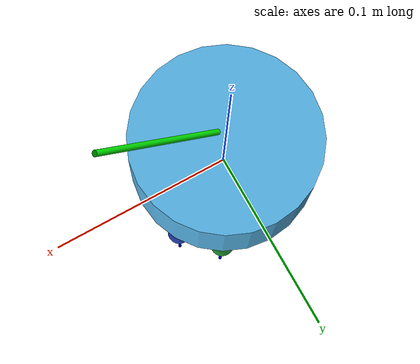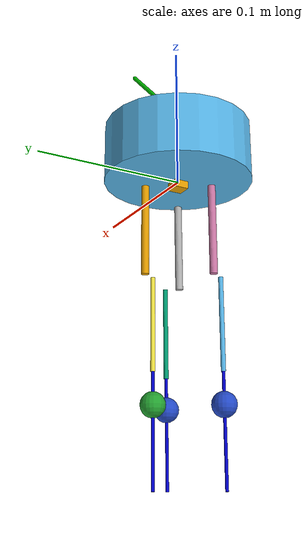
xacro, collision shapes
<?xml version="1.0"?>
<robot xmlns:xacro="http://www.ros.org/wiki/xacro" name="new_gurdy_drive">

    <gazebo>
        <plugin name="gazebo_ros_control" filename="libgazebo_ros_control.so">
            <robotNamespace>/new_gurdy</robotNamespace>
        </plugin>
    </gazebo>

    <!--MACROS-->

    <xacro:macro name="aux_link" params="number x y z r p yaw">
        <link name="aux_${number}_link">
            <inertial>
                <origin xyz="0 0 0.0285" rpy="0 0 0"/>
                <mass value="0.01" />
                <inertia ixx="2.64583333333e-08" ixy="0.0" ixz="0.0" iyy="2.64583333333e-08" iyz="0.0" izz="1.125e-08"/>
            </inertial>
            <collision>
                <origin xyz="0 0 0.00285" rpy="0 0 0"/>
                <geometry>
                    <cylinder length="0.005" radius="0.0015"/>
                </geometry>
            </collision>
            <visual>
                <origin rpy="0.0 0 0" xyz="0 0 0"/>
                <geometry>
                    <cylinder length="0.005" radius="0.0015"/>
                </geometry>
                <material name="blue"/>
            </visual>
	    </link>
        <joint name="head_aux_${number}_joint" type="revolute">
            <parent link="head_link"/>
            <child link="aux_${number}_link"/>
            <origin xyz="${x} ${y} ${z}" rpy="${r} ${p} ${yaw}"/>
            <limit lower="-1.55" upper="1.55" effort="1.0" velocity="0.005"/>
            <axis xyz="0 0 1"/>
        </joint>
    </xacro:macro>

    <xacro:macro name="upperleg_link" params="number">
        <link name="upperleg_M${number}_link">
            <inertial>
                <origin xyz="0 0 0.03" rpy="0 0 0"/>
                <mass value="0.01" />
                <inertia ixx="3.015625e-05" ixy="0.0" ixz="0.0" iyy="3.015625e-05" iyz="0.0" izz="3.125e-07"/>
            </inertial>
            <collision>
                <origin xyz="0 0 0.03" rpy="0 0 0"/>
                <geometry>
                    <cylinder length="0.06" radius="0.0025"/>
                </geometry>
            </collision>
            <visual>
                <origin rpy="0.0 0 0" xyz="0 0 0"/>
                <geometry>
                    <mesh filename="package://gurdy_description/models/gurdy/meshes/gurdy_higherleg_v2.dae"/>
                </geometry>
            </visual>
        </link>
        <joint name="auxs_upperlegM${number}_joint" type="revolute">
            <parent link="aux_${number}_link"/>
            <child link="upperleg_M${number}_link"/>
            <origin xyz="0 0 0" rpy="0 0 0"/>
            <limit lower="-1.55" upper="0.0" effort="1.0" velocity="0.005"/>
            <axis xyz="0 1 0"/>
	    </joint>
    </xacro:macro>

    <xacro:macro name="lowerleg_link"  params="number">
        <link name="lowerleg_M${number}_link">
            <inertial>
                <origin xyz="0 0 0.03" rpy="0 0 0"/>
                <mass value="0.01" />
                <inertia ixx="3.005625e-05" ixy="0.0" ixz="0.0" iyy="3.005625e-05" iyz="0.0" izz="1.125e-07"/>
            </inertial>
            <collision>
                <origin xyz="0 0 0.03" rpy="0 0 0"/>
                <geometry>
                    <cylinder length="0.06" radius="0.0015"/>
                </geometry>
            </collision>
            <visual>
                <origin rpy="0.0 0 0" xyz="0 0 0"/>
                <geometry>
                    <mesh filename="package://gurdy_description/models/gurdy/meshes/gurdy_lowerleg_v2.dae"/>
                </geometry>
            </visual>
        </link>
        <joint name="upperlegM${number}_lowerlegM${number}_joint" type="continuous">
            <parent link="upperleg_M${number}_link"/>
            <child link="lowerleg_M${number}_link"/>
             <origin xyz="0 0.0095 0.06" rpy="0 0 3.14159"/>
            <limit lower="-2.9" upper="1.5708" effort="1.0" velocity="0.005"/>
            <axis xyz="0 1 0"/>
        </joint>
    </xacro:macro>

    <xacro:macro name="internallowerleg_link" params="number">
        <link name="internallowerleg_M${number}_link">
            <inertial>
                <origin xyz="0 0 0.03" rpy="0 0 0"/>
                <mass value="0.01" />
                <inertia ixx="5.58333333333e-06" ixy="0.0" ixz="0.0" iyy="5.58333333333e-06" iyz="0.0" izz="5e-07"/>
            </inertial>
            <collision>
                <origin xyz="0 0 0.03" rpy="0 0 0"/>
                <geometry>
                    <cylinder length="0.08" radius="0.001"/>
                </geometry>
            </collision>
            <visual>
                <origin rpy="0.0 0 0" xyz="0 0 0"/>
                <geometry>
                    <cylinder length="0.03" radius="0.001"/>
                </geometry>
                <material name="blue"/>
            </visual>
        </link>
        <joint name="internal_lowerleg${number}_joint" type="prismatic">
            <parent link="lowerleg_M${number}_link"/>
            <child link="internallowerleg_M${number}_link"/>
            <origin xyz="0 0.0 0.06" rpy="0 0 0"/>
            <limit lower="0" upper="0.02" effort="1.0" velocity="0.005"/>
            <axis xyz="0 0 1"/>
	    </joint>
    </xacro:macro>

    <xacro:macro name="foot_link" params="number colour">
        <link name="footM${number}_link">
            <inertial>
                <origin xyz="0 0 0" rpy="0 0 0"/>
                <mass value="0.01" />
                <inertia ixx="1.28e-06" ixy="0.0" ixz="0.0" iyy="1.28e-06" iyz="0.0" izz="1.28e-06"/>
            </inertial>
            <collision>
                <origin xyz="0 0 0" rpy="0 0 0"/>
                <geometry>
                    <sphere radius="0.008"/>
                </geometry>
            </collision>
            <visual>
                <origin rpy="0.0 0 0" xyz="0 0 0"/>
                <geometry>
                    <sphere radius="0.008"/>
                </geometry>
            </visual>
        </link>
        <gazebo reference="footM${number}_link">
            <kp>1000.0</kp>
            <kd>1000.0</kd>
            <mu1>10.0</mu1>
            <mu2>10.0</mu2>
            <material>Gazebo/${colour}</material>
        </gazebo>
        <joint name="basefoot_peg_M${number}_joint" type="continuous">
            <parent link="internallowerleg_M${number}_link"/>
            <child link="footM${number}_link"/>
            <origin xyz="0 0 0.02" rpy="0 0 0"/>
        </joint>
    </xacro:macro>

 <!-- Writing the xacro of transmissions -->

    <xacro:macro name="head_transmission" params="number number_transm">

        <transmission name="tran${number_transm}">
            <type>transmission_interface/SimpleTransmission</type>
            <joint name="head_aux_${number}_joint">
                <hardwareInterface>EffortJointInterface</hardwareInterface>
            </joint>
            <actuator name="motor${number_transm}">
                <hardwareInterface>EffortJointInterface</hardwareInterface>
                <mechanicalReduction>1</mechanicalReduction>
            </actuator>
        </transmission>
    </xacro:macro>

    <xacro:macro name="aux_transmission" params="number number_transm">

        <transmission name="tran${number_transm}">
            <type>transmission_interface/SimpleTransmission</type>
            <joint name="auxs_upperlegM${number}_joint">
                <hardwareInterface>EffortJointInterface</hardwareInterface>
            </joint>
            <actuator name="motor${number_transm}">
                <hardwareInterface>EffortJointInterface</hardwareInterface>
                <mechanicalReduction>1</mechanicalReduction>
            </actuator>
        </transmission>
    </xacro:macro>

    <xacro:macro name="intermediate_transmission" params="number number_transm">

        <transmission name="tran${number_transm}">
            <type>transmission_interface/SimpleTransmission</type>
            <joint name="upperlegM${number}_lowerlegM${number}_joint">
                <hardwareInterface>EffortJointInterface</hardwareInterface>
            </joint>
            <actuator name="motor${number_transm}">
                <hardwareInterface>EffortJointInterface</hardwareInterface>
                <mechanicalReduction>1</mechanicalReduction>
            </actuator>
        </transmission>
    </xacro:macro>

    <xacro:macro name="prismatic_transmission" params="number number_transm">

        <transmission name="tran${number_transm}">
            <type>transmission_interface/SimpleTransmission</type>
            <joint name="internal_lowerleg${number}_joint">
                <hardwareInterface>EffortJointInterface</hardwareInterface>
            </joint>
            <actuator name="motor${number_transm}">
                <hardwareInterface>EffortJointInterface</hardwareInterface>
                <mechanicalReduction>1</mechanicalReduction>
            </actuator>
        </transmission>
    </xacro:macro>

     <xacro:macro name="base_transmission" params="number number_transm">

        <transmission name="tran${number_transm}">
            <type>transmission_interface/SimpleTransmission</type>
            <joint name="basefoot_peg_M${number}_joint">
                <hardwareInterface>EffortJointInterface</hardwareInterface>
            </joint>
            <actuator name="motor${number_transm}">
                <hardwareInterface>EffortJointInterface</hardwareInterface>
                <mechanicalReduction>1</mechanicalReduction>
            </actuator>
        </transmission>
    </xacro:macro>

    <material name="blue">
        <color rgba="0 0 0.8 1"/>
    </material>
    <material name="red">
        <color rgba="0.8 0 0 1"/>
    </material>
    <material name="green">
        <color rgba="0 0.8 0 1"/>
    </material>

    <!-- *** Link Definitions *** -->

    <link name="base_link">
        <collision>
            <origin xyz="0 0 0" rpy="0 0 0"/>
            <geometry>
                <box size="0.01 0.01 0.01"/>
            </geometry>
        </collision>
		<visual>
		    <origin xyz="0 0 0.01" rpy="0 0 0"/>
			<geometry>
				<box size="0.01 0.01 0.01"/>
			</geometry>
		</visual>
	</link>

    <link name="head_link">
 	    <inertial>
            <origin xyz="0 0 0.02" rpy="0 0 0"/>
            <mass value="0.01" />
            <inertia ixx="7.58333333333e-07" ixy="0.0" ixz="0.0" iyy="7.58333333333e-07" iyz="0.0" izz="1.25e-06"/>
        </inertial>
        <collision>
            <origin xyz="0 0 0.02" rpy="0 0 0"/>
            <geometry>
                <cylinder radius="0.05" length="0.04"/>
            </geometry>
        </collision>
        <visual>
            <origin rpy="0.0 0 0" xyz="0 0 0"/>
            <geometry>
                <mesh filename="package://gurdy_description/models/gurdy/meshes/gurdy_head_v2.dae"/>
            </geometry>
        </visual>
	</link>

    <gazebo reference="head_link">
        <mu1>10.0</mu1>
        <mu2>10.0</mu2>
    </gazebo>

    <joint name="fixed" type="fixed">
        <parent link="base_link"/>
        <child link="head_link"/>
    </joint>

    <link name="antenna_link">
 	    <inertial>
            <origin xyz="0 0 0.05" rpy="0 0 0"/>
            <mass value="0.005" />
            <inertia ixx="3.01322916667e-06" ixy="0.0" ixz="0.0" iyy="3.01322916667e-06" iyz="0.0" izz="5.625e-09"/>
        </inertial>
        <collision>
            <origin xyz="0 0 0.05" rpy="0 0 0"/>
            <geometry>
                <cylinder length="0.085" radius="0.0015"/>
            </geometry>
        </collision>
        <visual>
            <origin rpy="0.0 0 0" xyz="0 0 0"/>
            <geometry>
                <cylinder length="0.085" radius="0.0015"/>
            </geometry>
            <material name="green"/>
        </visual>
	</link>

    <joint name="antenna_joint" type="fixed">
    	<parent link="head_link"/>
    	<child link="antenna_link"/>
        <origin xyz="0.0 0.0 0.051" rpy="0.0 0.785 0.0"/>
	</joint>

<!--Assign number values to the links/transmission -->

    <xacro:aux_link number="1" x="-0.02165" y="-0.0125" z="-0.008" r="3.145159" p="0" yaw="0.523599"/>
    <xacro:head_transmission number="1" number_transm="1"/>

    <xacro:aux_link number="2" x="0.02165" y="-0.0125" z="-0.008" r="3.145159" p="0" yaw="02.61799"/>
    <xacro:head_transmission number="2" number_transm="2"/>

    <xacro:aux_link number="3" x="0" y="0.025" z="-0.008" r="3.145159" p="0" yaw="0.523599"/>
    <xacro:head_transmission number="3" number_transm="3"/>

    <xacro:upperleg_link number="1" />
    <xacro:aux_transmission number="1" number_transm="4"/>

    <xacro:upperleg_link number="2"/>
    <xacro:aux_transmission number="2" number_transm="5"/>

    <xacro:upperleg_link number="3"/>
    <xacro:aux_transmission number="3" number_transm="6"/>

    <xacro:lowerleg_link number="1"/>
    <xacro:intermediate_transmission number="1" number_transm="7"/>

    <xacro:lowerleg_link number="2"/>
    <xacro:intermediate_transmission number="2" number_transm="8"/>

    <xacro:lowerleg_link number="3"/>
    <xacro:intermediate_transmission number="3" number_transm="9"/>

    <xacro:internallowerleg_link number="1"/>
    <xacro:prismatic_transmission number="1" number_transm="10"/>

    <xacro:internallowerleg_link number="2"/>
    <xacro:prismatic_transmission number="2" number_transm="11"/>

    <xacro:internallowerleg_link number="3"/>
    <xacro:prismatic_transmission number="3" number_transm="12"/>

    <xacro:foot_link number="1" colour="Blue"/>
    <xacro:base_transmission number="1" number_transm="13"/>

    <xacro:foot_link number="2" colour="Blue"/>
    <xacro:base_transmission number="2" number_transm="14"/>

    <xacro:foot_link number="3" colour="Green"/>
    <xacro:base_transmission number="3" number_transm="15"/>

<!-- Including the sensors IMU & Camera -->

    <gazebo>
        <plugin name="gazebo_ros_imu_controller" filename="libgazebo_ros_imu.so">
          <robotNamespace>/gurdy</robotNamespace>
          <topicName>imu/data</topicName>
          <serviceName>imu/service</serviceName>
          <bodyName>base_link</bodyName>
          <gaussianNoise>0</gaussianNoise>
          <rpyOffsets>0 0 0</rpyOffsets>
          <updateRate>5.0</updateRate>
          <alwaysOn>true</alwaysOn>
          <gaussianNoise>0</gaussianNoise>
        </plugin>
    </gazebo>

    <gazebo reference="camera_link">
        <sensor type="camera" name="camera1">
        <update_rate>15.0</update_rate>
        <camera name="head">

            <pose>0 0 0.05 0 0.785 0</pose>

            <horizontal_fov>1.3962634</horizontal_fov>
            <image>
            <width>400</width>
            <height>400</height>
            <format>R8G8B8</format>
            </image>
            <clip>
            <near>0.01</near>
            <far>100</far>
            </clip>
            <noise>
            <type>gaussian</type>
            <stddev>0.007</stddev>
            </noise>
        </camera>
        <plugin name="camera_controller" filename="libgazebo_ros_camera.so">
            <alwaysOn>true</alwaysOn>
            <updateRate>0.0</updateRate>
            <cameraName>gurdy/camera1</cameraName>
            <imageTopicName>image_raw</imageTopicName>
            <cameraInfoTopicName>camera_info</cameraInfoTopicName>
            <frameName>camera_link</frameName>
            <hackBaseline>0.07</hackBaseline>
            <distortionK1>0.0</distortionK1>
            <distortionK2>0.0</distortionK2>
            <distortionK3>0.0</distortionK3>
            <distortionT1>0.0</distortionT1>
            <distortionT2>0.0</distortionT2>
        </plugin>
        </sensor>
    </gazebo>

    <!-- Differential drive controller  -->
  <gazebo>
    <plugin name="differential_drive_controller" filename="libgazebo_ros_diff_drive.so">

      <rosDebugLevel>Debug</rosDebugLevel>
      <publishWheelTF>false</publishWheelTF>
      <robotNamespace>/new_gurdy_drive</robotNamespace>
      <publishTf>1</publishTf>
      <publishWheelJointState>false</publishWheelJointState>
      <alwaysOn>true</alwaysOn>
      <updateRate>100.0</updateRate>
      <leftJoint>basefoot_peg_M1_joint</leftJoint>
      <rightJoint>basefoot_peg_M2_joint</rightJoint>
      <wheelSeparation>${2*0.05}</wheelSeparation>
      <wheelDiameter>${2*0.008}</wheelDiameter>
      <broadcastTF>1</broadcastTF>
      <wheelTorque>30</wheelTorque>
      <wheelAcceleration>1.8</wheelAcceleration>
      <commandTopic>cmd_vel</commandTopic>
      <odometryFrame>odom</odometryFrame>
      <odometryTopic>odom</odometryTopic>
      <robotBaseFrame>base_link</robotBaseFrame>
      <legacyMode>false</legacyMode>
      <odometrySource>world</odometrySource> <!-- 'encoder' instead of 'world' is also possible -->
      <publishTf>1</publishTf>

    </plugin>
  </gazebo>

</robot>
